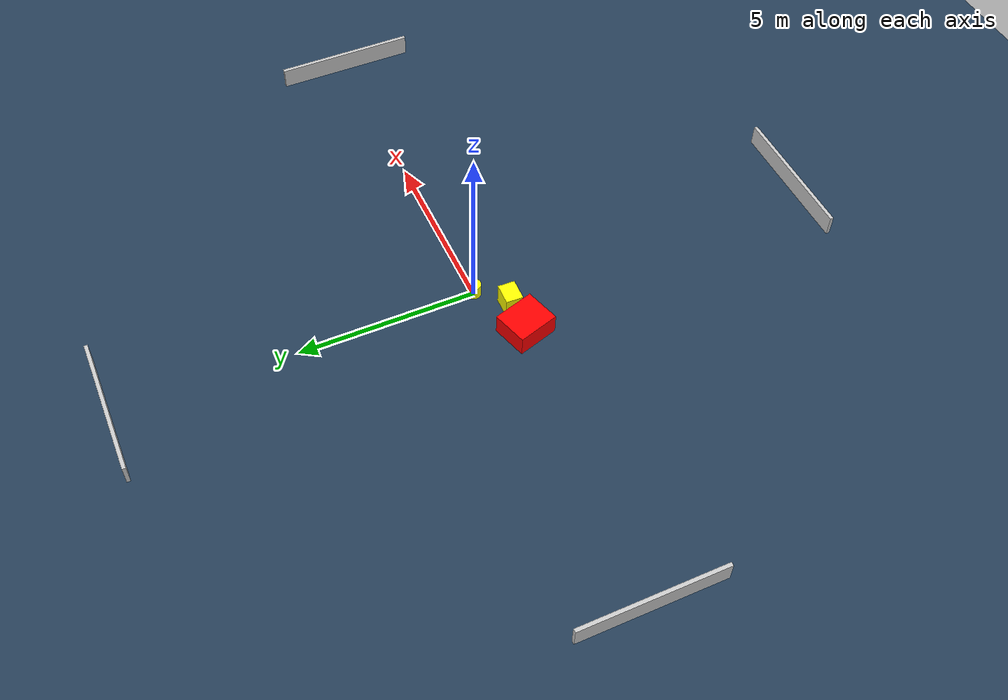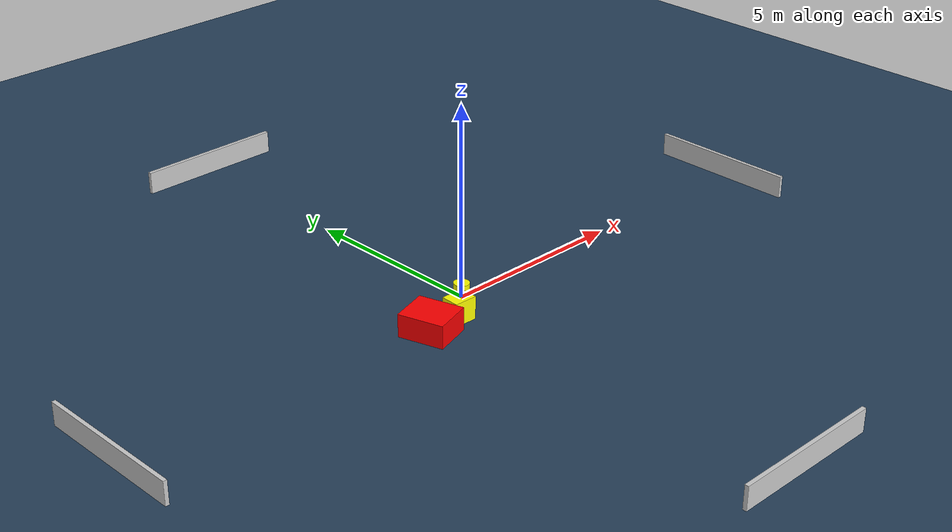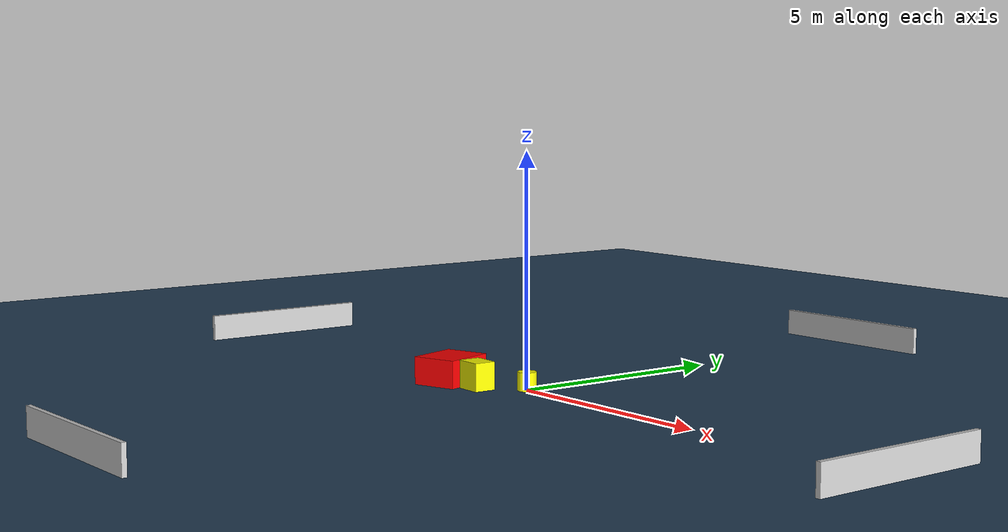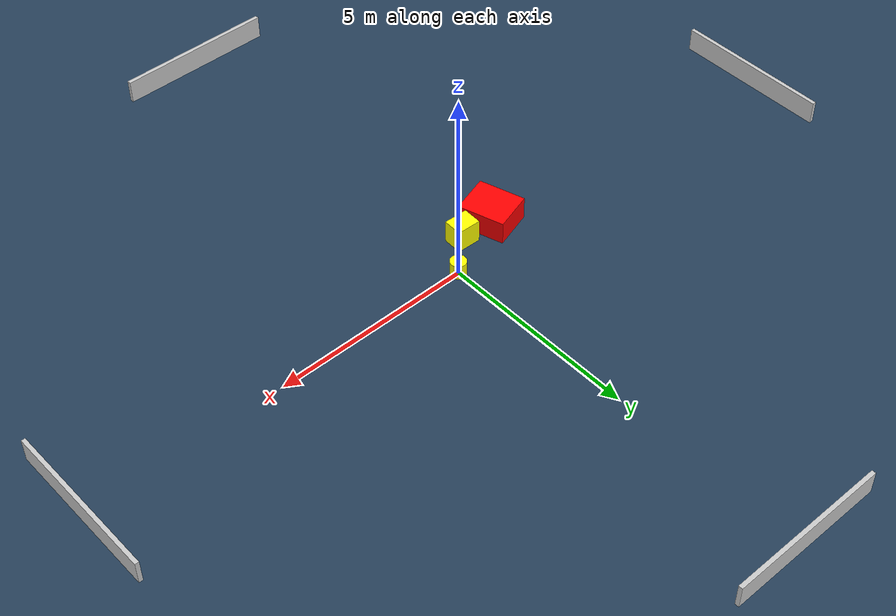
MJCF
<?xml version="1.0" ?>
<mujoco model="generated_environment">
  <option timestep="0.01" integrator="RK4" cone="elliptic"/>
  <default>
    <geom density="1"/>
  </default>
  <asset>
    <texture builtin="gradient" height="3072" name="skybox" rgb1="0.3 0.5 0.7" rgb2="0 0 0" type="skybox" width="512"/>
    <texture builtin="checker" height="300" name="groundplane" rgb1="0.2 0.3 0.4" rgb2="0.1 0.2 0.3" type="2d" width="300"/>
    <material name="groundplane" reflectance="0.2" texrepeat="5 5" texture="groundplane"/>
  </asset>
  <worldbody>
    <light dir="0 0 -1" directional="true" pos="0 0 1.5"/>
    <geom condim="3" friction="0.5 0.005 0.001" material="groundplane" name="floor" pos="0 0 0" size="0 0 0.05" type="plane"/>
    <body name="walls">
      <geom name="wall_1" condim="4" pos="-10.0 0.0 0.3" rgba="0.800000011920929 0.800000011920929 0.800000011920929 1.0" size="0.05 2.0 0.3" type="box"/>
      <geom name="wall_2" condim="4" pos="10.0 0.0 0.3" rgba="0.800000011920929 0.800000011920929 0.800000011920929 1.0" size="0.05 2.0 0.3" type="box"/>
      <geom name="wall_3" condim="4" pos="0.0 -10.0 0.3" rgba="0.800000011920929 0.800000011920929 0.800000011920929 1.0" size="2.0 0.05 0.3" type="box"/>
      <geom name="wall_4" condim="4" pos="0.0 10.0 0.3" rgba="0.800000011920929 0.800000011920929 0.800000011920929 1.0" size="2.0 0.05 0.3" type="box"/>
    </body>
    <body name="robot">
      <joint name="joint_x" type="slide" pos="0 0 0" axis="1 0 0"/>
      <joint name="joint_y" type="slide" pos="0 0 0" axis="0 1 0"/>
      <geom name="robot" type="cylinder" pos="0.0 0.0 0.2" size="0.2 0.2 0.0" mass="5.0" friction="1.0 0.005 0.0001" condim="4" rgba="1.0 1.0 0.0 1.0"/>
    </body>
    <body name="obstacle_1_movable">
      <geom name="obstacle_1_movable" condim="4" pos="-0.779191616054384 -0.720955731503982 0.3" euler="0 0 358.0538939208667" friction="0.0 0.005 0.001" rgba="1.0 1.0 0.0 1.0" size="0.30091578372577554 0.23983699268992273 0.3" type="box" mass="0.1"/>
      <joint type="free"/>
    </body>
    <body name="obstacle_2_static">
      <geom name="obstacle_2_static" condim="4" pos="-1.704848177243105 -0.7426257826737755 0.3" euler="0 0 197.150820154925" friction="0.0 0.005 0.001" rgba="1.0 0.0 0.0 1.0" size="0.5052541268074451 0.5903874660130484 0.3" type="box"/>
    </body>
  </worldbody>
  <actuator>
    <motor name="actuator_x" joint="joint_x" gear="1" ctrlrange="-1 1"/>
    <motor name="actuator_y" joint="joint_y" gear="1" ctrlrange="-1 1"/>
  </actuator>
</mujoco>
